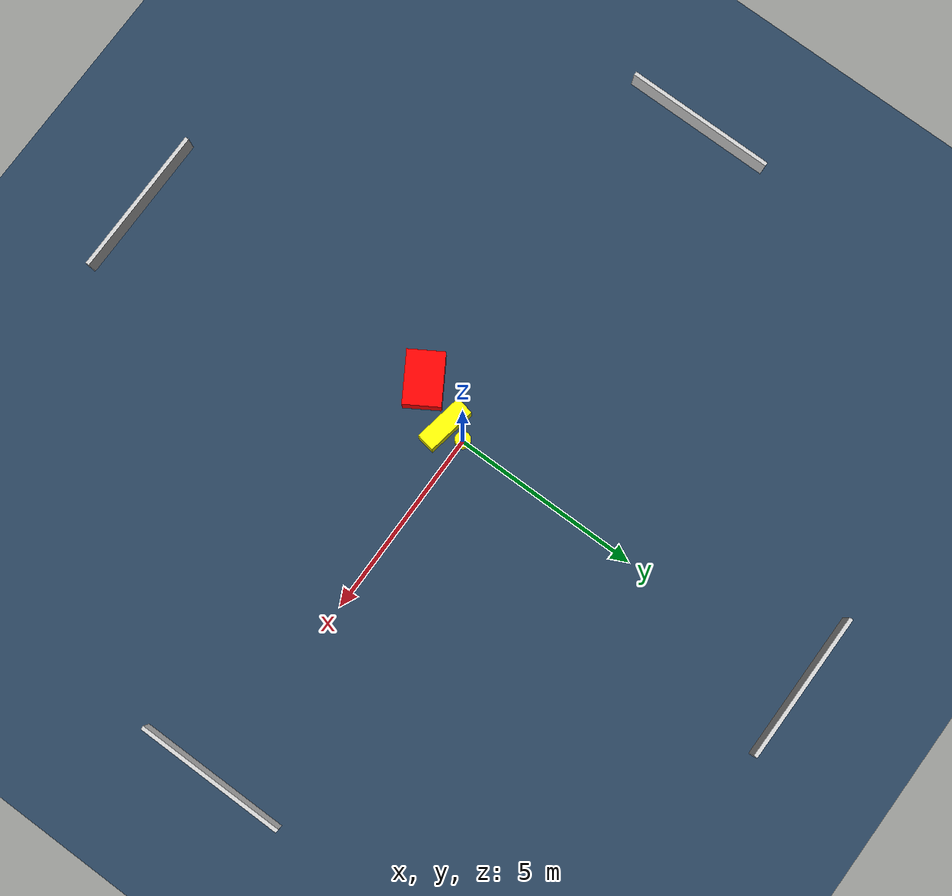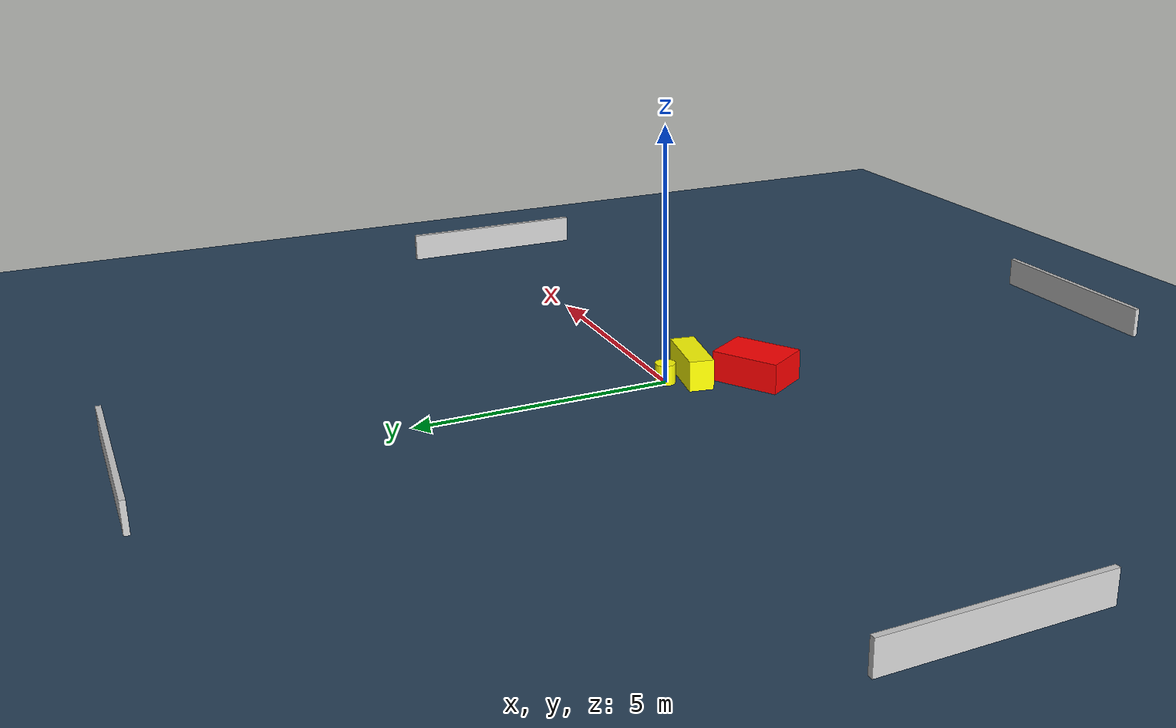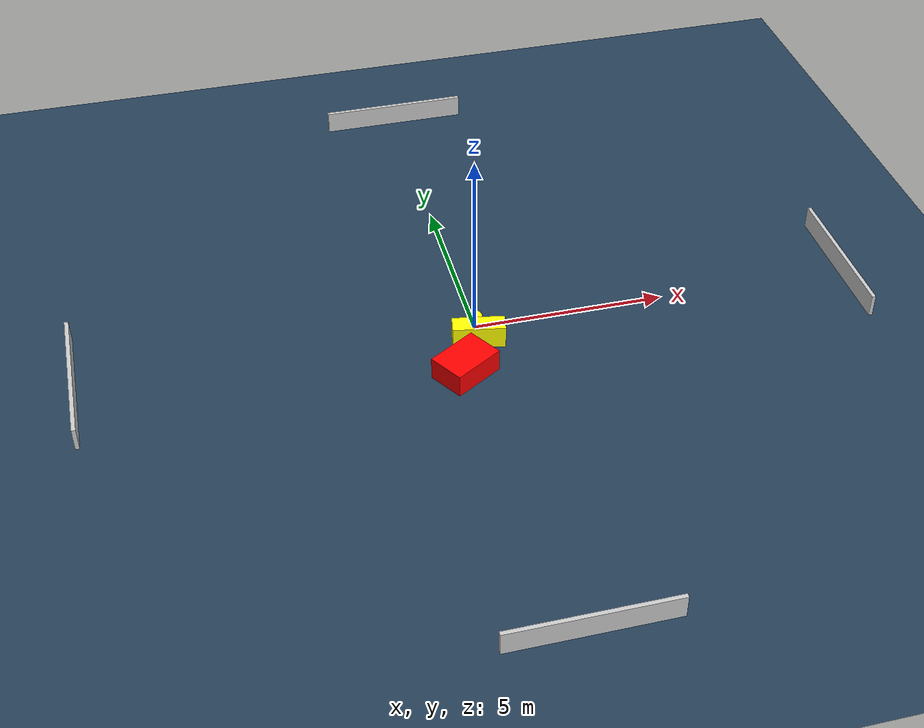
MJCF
<?xml version="1.0" ?>
<mujoco model="generated_environment">
  <option timestep="0.01" integrator="RK4" cone="elliptic"/>
  <default>
    <geom density="1"/>
  </default>
  <asset>
    <texture builtin="gradient" height="3072" name="skybox" rgb1="0.3 0.5 0.7" rgb2="0 0 0" type="skybox" width="512"/>
    <texture builtin="checker" height="300" name="groundplane" rgb1="0.2 0.3 0.4" rgb2="0.1 0.2 0.3" type="2d" width="300"/>
    <material name="groundplane" reflectance="0.2" texrepeat="5 5" texture="groundplane"/>
  </asset>
  <worldbody>
    <light dir="0 0 -1" directional="true" pos="0 0 1.5"/>
    <geom condim="3" friction="0.5 0.005 0.001" material="groundplane" name="floor" pos="0 0 0" size="0 0 0.05" type="plane"/>
    <body name="walls">
      <geom name="wall_1" condim="4" pos="-10.0 0.0 0.3" rgba="0.800000011920929 0.800000011920929 0.800000011920929 1.0" size="0.05 2.0 0.3" type="box"/>
      <geom name="wall_2" condim="4" pos="10.0 0.0 0.3" rgba="0.800000011920929 0.800000011920929 0.800000011920929 1.0" size="0.05 2.0 0.3" type="box"/>
      <geom name="wall_3" condim="4" pos="0.0 -10.0 0.3" rgba="0.800000011920929 0.800000011920929 0.800000011920929 1.0" size="2.0 0.05 0.3" type="box"/>
      <geom name="wall_4" condim="4" pos="0.0 10.0 0.3" rgba="0.800000011920929 0.800000011920929 0.800000011920929 1.0" size="2.0 0.05 0.3" type="box"/>
    </body>
    <body name="robot">
      <joint name="joint_x" type="slide" pos="0 0 0" axis="1 0 0"/>
      <joint name="joint_y" type="slide" pos="0 0 0" axis="0 1 0"/>
      <geom name="robot" type="cylinder" pos="0.0 0.0 0.2" size="0.2 0.2 0.0" mass="5.0" friction="1.0 0.005 0.0001" condim="4" rgba="1.0 1.0 0.0 1.0"/>
    </body>
    <body name="obstacle_1_movable">
      <geom name="obstacle_1_movable" condim="4" pos="-0.02543305669219775 -0.5554185353449996 0.3" euler="0 0 349.8399762271939" friction="0.0 0.005 0.001" rgba="1.0 1.0 0.0 1.0" size="0.6650485420300397 0.24205825384647062 0.3" type="box" mass="0.1"/>
      <joint type="free"/>
    </body>
    <body name="obstacle_2_static">
      <geom name="obstacle_2_static" condim="4" pos="-0.6335453676633839 -1.6427108370308432 0.3" euler="0 0 301.6351414336466" friction="0.0 0.005 0.001" rgba="1.0 0.0 0.0 1.0" size="0.48732736819460765 0.6891425472316821 0.3" type="box"/>
    </body>
  </worldbody>
  <actuator>
    <motor name="actuator_x" joint="joint_x" gear="1" ctrlrange="-1 1"/>
    <motor name="actuator_y" joint="joint_y" gear="1" ctrlrange="-1 1"/>
  </actuator>
</mujoco>
